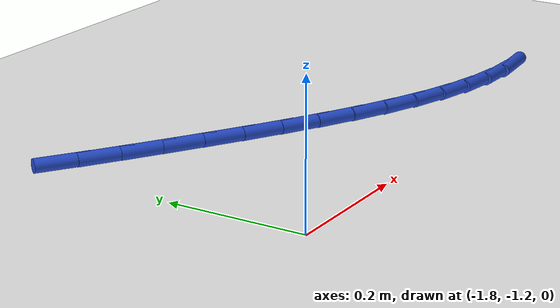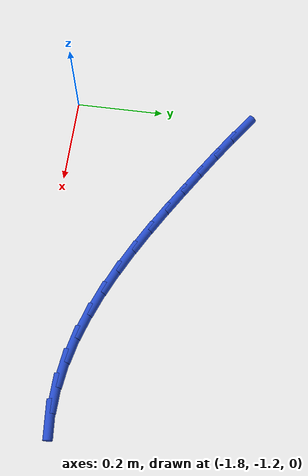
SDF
<sdf version="1.6">
 <world name="default">
  <model name="ground_plane">
   <static>1</static>
   <link name="link">
    <collision name="collision">
     <geometry><plane><normal>0 0 1</normal><size>100 100</size></plane></geometry>
     <surface><friction><ode><mu>100</mu><mu2>50</mu2></ode></friction></surface>
    </collision>
    <visual name="visual">
     <cast_shadows>0</cast_shadows>
     <geometry><plane><normal>0 0 1</normal><size>100 100</size></plane></geometry>
     <material>
      <script><uri>file://media/materials/scripts/gazebo.material</uri><name>Gazebo/WhiteGlow</name></script>
     </material>
    </visual>
   </link>
  </model>
  <model name="line">
   <link name="link_76">
    <pose>-1.773803520536385 -0.8104805349971708 0.01 0 1.57 -0.6035473595705335</pose>
    <collision name="collision">
     <geometry><cylinder><radius>0.01</radius><length>0.08</length></cylinder></geometry>
    </collision>
    <visual name="visual">
     <material>
      <script><name>Gazebo/Blue</name><uri>file://media/materials/scripts/gazebo.material</uri></script>
     </material>
     <geometry><cylinder><radius>0.01</radius><length>0.08</length></cylinder></geometry>
    </visual>
   </link>
   <link name="link_77">
    <pose>-1.7255005182788559 -0.8437785562469988 0.01 0 1.57 -0.5789032859307176</pose>
    <collision name="collision">
     <geometry><cylinder><radius>0.01</radius><length>0.08</length></cylinder></geometry>
    </collision>
    <visual name="visual">
     <material>
      <script><name>Gazebo/Blue</name><uri>file://media/materials/scripts/gazebo.material</uri></script>
     </material>
     <geometry><cylinder><radius>0.01</radius><length>0.08</length></cylinder></geometry>
    </visual>
   </link>
   <link name="link_78">
    <pose>-1.6757593499746157 -0.8762894882942993 0.01 0 1.57 -0.5651252789470513</pose>
    <collision name="collision">
     <geometry><cylinder><radius>0.01</radius><length>0.08</length></cylinder></geometry>
    </collision>
    <visual name="visual">
     <material>
      <script><name>Gazebo/Blue</name><uri>file://media/materials/scripts/gazebo.material</uri></script>
     </material>
     <geometry><cylinder><radius>0.01</radius><length>0.08</length></cylinder></geometry>
    </visual>
   </link>
   <link name="link_79">
    <pose>-1.6252771101470807 -0.9083009058177393 0.01 0 1.57 -0.5576294582470771</pose>
    <collision name="collision">
     <geometry><cylinder><radius>0.01</radius><length>0.08</length></cylinder></geometry>
    </collision>
    <visual name="visual">
     <material>
      <script><name>Gazebo/Blue</name><uri>file://media/materials/scripts/gazebo.material</uri></script>
     </material>
     <geometry><cylinder><radius>0.01</radius><length>0.08</length></cylinder></geometry>
    </visual>
   </link>
   <link name="link_80">
    <pose>-1.574587311290375 -0.9399137057841253 0.01 0 1.57 -0.5449391049327033</pose>
    <collision name="collision">
     <geometry><cylinder><radius>0.01</radius><length>0.08</length></cylinder></geometry>
    </collision>
    <visual name="visual">
     <material>
      <script><name>Gazebo/Blue</name><uri>file://media/materials/scripts/gazebo.material</uri></script>
     </material>
     <geometry><cylinder><radius>0.01</radius><length>0.08</length></cylinder></geometry>
    </visual>
   </link>
   <link name="link_81">
    <pose>-1.5237734367420166 -0.9707152176639409 0.01 0 1.57 -0.524847652314877</pose>
    <collision name="collision">
     <geometry><cylinder><radius>0.01</radius><length>0.08</length></cylinder></geometry>
    </collision>
    <visual name="visual">
     <material>
      <script><name>Gazebo/Blue</name><uri>file://media/materials/scripts/gazebo.material</uri></script>
     </material>
     <geometry><cylinder><radius>0.01</radius><length>0.08</length></cylinder></geometry>
    </visual>
   </link>
   <link name="link_82">
    <pose>-1.472842251789241 -1.000205221273542 0.01 0 1.57 -0.49688723088122616</pose>
    <collision name="collision">
     <geometry><cylinder><radius>0.01</radius><length>0.08</length></cylinder></geometry>
    </collision>
    <visual name="visual">
     <material>
      <script><name>Gazebo/Blue</name><uri>file://media/materials/scripts/gazebo.material</uri></script>
     </material>
     <geometry><cylinder><radius>0.01</radius><length>0.08</length></cylinder></geometry>
    </visual>
   </link>
   <link name="link_83">
    <pose>-1.4218005217192804 -1.0278834964292858 0.01 0 1.57 -0.4604135183986716</pose>
    <collision name="collision">
     <geometry><cylinder><radius>0.01</radius><length>0.08</length></cylinder></geometry>
    </collision>
    <visual name="visual">
     <material>
      <script><name>Gazebo/Blue</name><uri>file://media/materials/scripts/gazebo.material</uri></script>
     </material>
     <geometry><cylinder><radius>0.01</radius><length>0.08</length></cylinder></geometry>
    </visual>
   </link>
   <link name="link_84">
    <pose>-1.3706550118193688 -1.053249822947529 0.01 0 1.57 -0.41462862358304303</pose>
    <collision name="collision">
     <geometry><cylinder><radius>0.01</radius><length>0.08</length></cylinder></geometry>
    </collision>
    <visual name="visual">
     <material>
      <script><name>Gazebo/Blue</name><uri>file://media/materials/scripts/gazebo.material</uri></script>
     </material>
     <geometry><cylinder><radius>0.01</radius><length>0.08</length></cylinder></geometry>
    </visual>
   </link>
   <link name="link_85">
    <pose>-1.3194124873767392 -1.0758039806446285 0.01 0 1.57 -0.35863366500030486</pose>
    <collision name="collision">
     <geometry><cylinder><radius>0.01</radius><length>0.08</length></cylinder></geometry>
    </collision>
    <visual name="visual">
     <material>
      <script><name>Gazebo/Blue</name><uri>file://media/materials/scripts/gazebo.material</uri></script>
     </material>
     <geometry><cylinder><radius>0.01</radius><length>0.08</length></cylinder></geometry>
    </visual>
   </link>
   <link name="link_86">
    <pose>-1.268079713678627 -1.0950457493369412 0.01 0 1.57 -0.291533201000189</pose>
    <collision name="collision">
     <geometry><cylinder><radius>0.01</radius><length>0.08</length></cylinder></geometry>
    </collision>
    <visual name="visual">
     <material>
      <script><name>Gazebo/Blue</name><uri>file://media/materials/scripts/gazebo.material</uri></script>
     </material>
     <geometry><cylinder><radius>0.01</radius><length>0.08</length></cylinder></geometry>
    </visual>
   </link>
   <link name="link_87">
    <pose>-1.216663456012265 -1.1104749088408232 0.01 0 1.57 -0.212617616826167</pose>
    <collision name="collision">
     <geometry><cylinder><radius>0.01</radius><length>0.08</length></cylinder></geometry>
    </collision>
    <visual name="visual">
     <material>
      <script><name>Gazebo/Blue</name><uri>file://media/materials/scripts/gazebo.material</uri></script>
     </material>
     <geometry><cylinder><radius>0.01</radius><length>0.08</length></cylinder></geometry>
    </visual>
   </link>
   <link name="link_88">
    <pose>-1.1651704796648874 -1.1215912389726321 0.01 0 1.57 -0.12164089687083657</pose>
    <collision name="collision">
     <geometry><cylinder><radius>0.01</radius><length>0.08</length></cylinder></geometry>
    </collision>
    <visual name="visual">
     <material>
      <script><name>Gazebo/Blue</name><uri>file://media/materials/scripts/gazebo.material</uri></script>
     </material>
     <geometry><cylinder><radius>0.01</radius><length>0.08</length></cylinder></geometry>
    </visual>
   </link>
   <link name="link_89">
    <pose>-1.113607549923726 -1.1278945195487244 0.01 0 1.57 -0.01918737910270684</pose>
    <collision name="collision">
     <geometry><cylinder><radius>0.01</radius><length>0.08</length></cylinder></geometry>
    </collision>
    <visual name="visual">
     <material>
      <script><name>Gazebo/Blue</name><uri>file://media/materials/scripts/gazebo.material</uri></script>
     </material>
     <geometry><cylinder><radius>0.01</radius><length>0.08</length></cylinder></geometry>
    </visual>
   </link>
   <link name="link_90">
    <pose>-1.0619814880348941 -1.1288852099487947 0.01 0 1.57 0.0881892916743641</pose>
    <collision name="collision">
     <geometry><cylinder><radius>0.01</radius><length>0.08</length></cylinder></geometry>
    </collision>
    <visual name="visual">
     <material>
      <script><name>Gazebo/Blue</name><uri>file://media/materials/scripts/gazebo.material</uri></script>
     </material>
     <geometry><cylinder><radius>0.01</radius><length>0.08</length></cylinder></geometry>
    </visual>
   </link>
  </model>
 </world>
</sdf>
